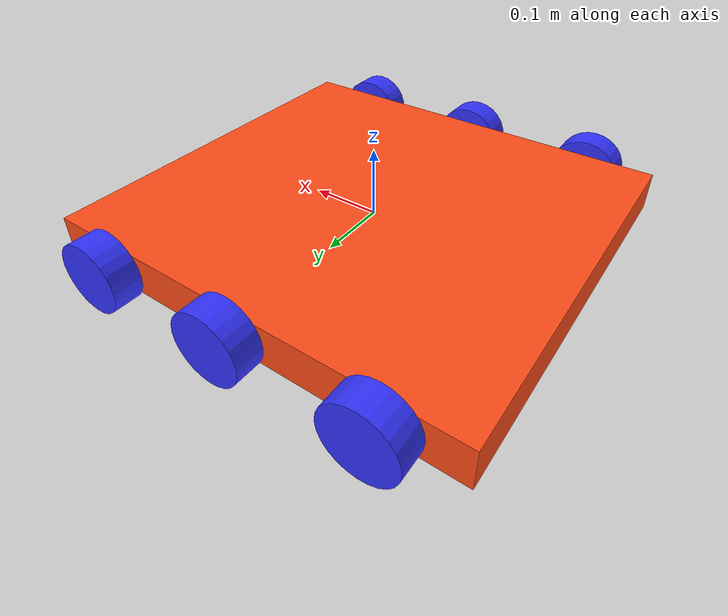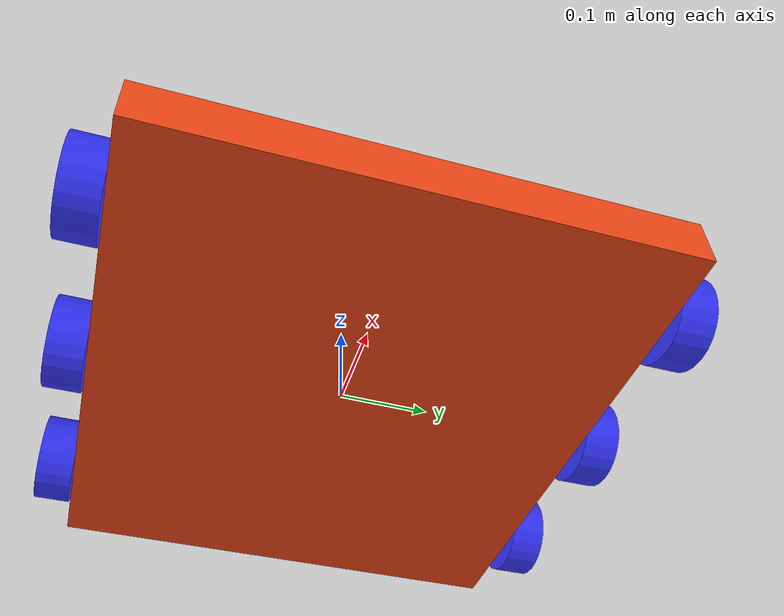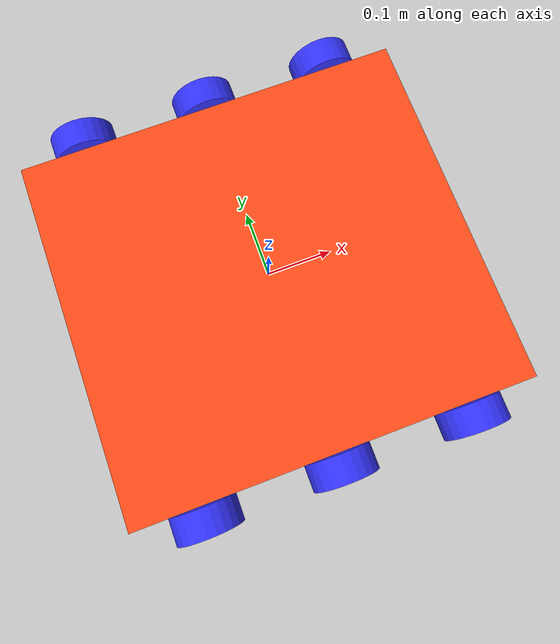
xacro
<?xml version="1.0"?>
<robot xmlns:xacro="http://www.ros.org/wiki/xacro" >

    <xacro:include filename="inertial_macros.xacro"/>

    <xacro:property name="chassis_length" value="0.6096"/>
    <xacro:property name="chassis_width" value="0.55885"/>
    <xacro:property name="chassis_height" value="0.05715"/>
    <xacro:property name="chassis_mass" value="1.0"/>
    <xacro:property name="wheel_radius" value="0.05"/>
    <xacro:property name="wheel_thickness" value="0.05"/>
    <xacro:property name="wheel_mass" value="0.1"/>
    <xacro:property name="wheel_offset_x" value="0"/>
    <xacro:property name="wheel_offset_y" value="0.1485"/>
    <xacro:property name="wheel_offset_z" value="0"/>

    <material name="white">
        <color rgba="1 1 1 1" />
    </material>

    <material name="orange">
        <color rgba="1 0.3 0.1 1"/>
    </material>

    <material name="blue">
        <color rgba="0.2 0.2 1 1"/>
    </material>

    <material name="black">
        <color rgba="0 0 0 1"/>
    </material>

    <material name="red">
        <color rgba="1 0 0 1"/>
    </material>

    <!-- BASE LINK -->

    <link name="base_link">

    </link>

    <!-- BASE_FOOTPRINT LINK -->
    <joint name="base_footprint_joint" type="fixed">
        <parent link="base_link"/>
        <child link="base_footprint"/>
        <origin xyz="0 0 0" rpy="0 0 0"/>
    </joint>

    <link name="base_footprint">
    </link>

    <!-- CHASSIS LINK -->

    <joint name="chassis_joint" type="fixed">
        <parent link="base_link"/>
        <child link="chassis"/>
        <origin xyz="0 0 0"/>
    </joint>

    <link name="chassis">
        <visual>
            <origin xyz="0 0 0" rpy="0 0 0"/>
            <geometry>
                <box size="${chassis_length} ${chassis_width} ${chassis_height}"/>
            </geometry>
            <material name="orange"/>
        </visual>
        <collision>
            <origin xyz="0 0 0"/>
            <geometry>
                <box size="${chassis_length} ${chassis_width} ${chassis_height}"/>
            </geometry>
        </collision>
        <xacro:inertial_box mass="0.5" x="${chassis_length}" y="${chassis_width}" z="${chassis_height}">
            <origin xyz="0 0 0" rpy="0 0 0"/>
        </xacro:inertial_box>
    </link>

    <gazebo reference="chassis">
        <material>Gazebo/Orange</material>
    </gazebo>

    <!-- LEFT WHEEL FRONT LINK -->

    <joint name="left_front_joint" type="continuous">
        <parent link="base_link"/>
        <child link="left_front"/>
        <origin xyz="0.2032 0.3000 0" rpy="-${pi/2} 0 0" />
        <axis xyz="0 0 1"/>
    </joint>

    <link name="left_front">
        <visual>
            <geometry>
                <cylinder radius="0.05" length="0.04"/>
            </geometry>
            <material name="blue"/>
        </visual>
        <collision>
            <geometry>
                <sphere radius="${wheel_radius}"/>
            </geometry>
        </collision>
        <xacro:inertial_cylinder mass="${wheel_mass}" length="${wheel_thickness}" radius="${wheel_radius}">
            <origin xyz="0 0 0" rpy="0 0 0"/>
        </xacro:inertial_cylinder>
    </link>

    <gazebo reference="left_front">
        <material>Gazebo/Blue</material>
        <mu1 value="0.001"/>
        <mu2 value="0.001"/>
    </gazebo>

<!-- LEFT WHEEL CENTER LINK -->

    <joint name="left_center_joint" type="continuous">
        <parent link="base_link"/>
        <child link="left_center"/>
        <origin xyz="0 0.3000 0" rpy="-${pi/2} 0 0" />
        <axis xyz="0 0 1"/>
    </joint>

    <link name="left_center">
        <visual>
            <geometry>
                <cylinder radius="${wheel_radius}" length="0.04"/>
            </geometry>
            <material name="blue"/>
        </visual>
        <collision>
            <geometry>
                <sphere radius="${wheel_radius}"/>
            </geometry>
        </collision>
        <xacro:inertial_cylinder mass="${wheel_mass}" length="${wheel_thickness}" radius="${wheel_radius}">
            <origin xyz="0 0 0" rpy="0 0 0"/>
        </xacro:inertial_cylinder>
    </link>

    <gazebo reference="left_center">
        <material>Gazebo/Blue</material>
    </gazebo>

<!-- LEFT WHEEL BACK LINK -->

    <joint name="left_back_joint" type="continuous">
        <parent link="base_link"/>
        <child link="left_back"/>
        <origin xyz="-0.2032 0.3000 0" rpy="-${pi/2} 0 0" />
        <axis xyz="0 0 1"/>
    </joint>

    <link name="left_back">
        <visual>
            <geometry>
                <cylinder radius="${wheel_radius}" length="0.04"/>
            </geometry>
            <material name="blue"/>
        </visual>
        <collision>
            <geometry>
                <sphere radius="${wheel_radius}"/>
            </geometry>
        </collision>
        <xacro:inertial_cylinder mass="${wheel_mass}" length="${wheel_thickness}" radius="${wheel_radius}">
            <origin xyz="0 0 0" rpy="0 0 0"/>
        </xacro:inertial_cylinder>
    </link>

    <gazebo reference="left_back">
        <material>Gazebo/Blue</material>
        <mu1 value="0.001"/>
        <mu2 value="0.001"/>
    </gazebo>

    <!-- RIGHT WHEEL FRONT LINK -->

    <joint name="right_front_joint" type="continuous">
        <parent link="base_link"/>
        <child link="right_front"/>
        <origin xyz="0.2032 -0.3000 0" rpy="${pi/2} 0 0" />
        <axis xyz="0 0 1"/>
    </joint>

    <link name="right_front">
        <visual>
            <geometry>
                <cylinder radius="${wheel_radius}" length="0.04"/>
            </geometry>
            <material name="blue"/>
        </visual>
        <collision>
            <geometry>
                <sphere radius="${wheel_radius}"/>
            </geometry>
        </collision>
        <xacro:inertial_cylinder mass="${wheel_mass}" length="${wheel_thickness}" radius="${wheel_radius}">
            <origin xyz="0 0 0" rpy="0 0 0"/>
        </xacro:inertial_cylinder>
    </link>

    <gazebo reference="right_front">
        <material>Gazebo/Blue</material>
        <mu1 value="0.001"/>
        <mu2 value="0.001"/>
    </gazebo>

    <!-- RIGHT WHEEL CENTER LINK -->

    <joint name="right_center_joint" type="continuous">
        <parent link="base_link"/>
        <child link="right_center"/>
        <origin xyz="0 -0.3000 0" rpy="${pi/2} 0 0" />
        <axis xyz="0 0 -1"/>
    </joint>

    <link name="right_center">
        <visual>
            <geometry>
                <cylinder radius="${wheel_radius}" length="0.04"/>
            </geometry>
            <material name="blue"/>
        </visual>
        <collision>
            <geometry>
                <sphere radius="${wheel_radius}"/>
            </geometry>
        </collision>
        <xacro:inertial_cylinder mass="${wheel_mass}" length="${wheel_thickness}" radius="${wheel_radius}">
            <origin xyz="0 0 0" rpy="0 0 0"/>
        </xacro:inertial_cylinder>
    </link>

    <gazebo reference="right_center">
        <material>Gazebo/Blue</material>
    </gazebo>

        <!-- RIGHT WHEEL BACK LINK -->

    <joint name="right_back_joint" type="continuous">
        <parent link="base_link"/>
        <child link="right_back"/>
        <origin xyz="-0.2032 -0.3000 0" rpy="${pi/2} 0 0" />
        <axis xyz="0 0 -1"/>
    </joint>

    <link name="right_back">
        <visual>
            <geometry>
                <cylinder radius="${wheel_radius}" length="0.04"/>
            </geometry>
            <material name="blue"/>
        </visual>
        <collision>
            <geometry>
                <sphere radius="${wheel_radius}"/>
            </geometry>
        </collision>
        <xacro:inertial_cylinder mass="${wheel_mass}" length="${wheel_thickness}" radius="${wheel_radius}">
            <origin xyz="0 0 0" rpy="0 0 0"/>
        </xacro:inertial_cylinder>
    </link>

    <gazebo reference="right_back">
        <material>Gazebo/Blue</material>
        <mu1 value="0.001"/>
        <mu2 value="0.001"/>
    </gazebo>

</robot>
